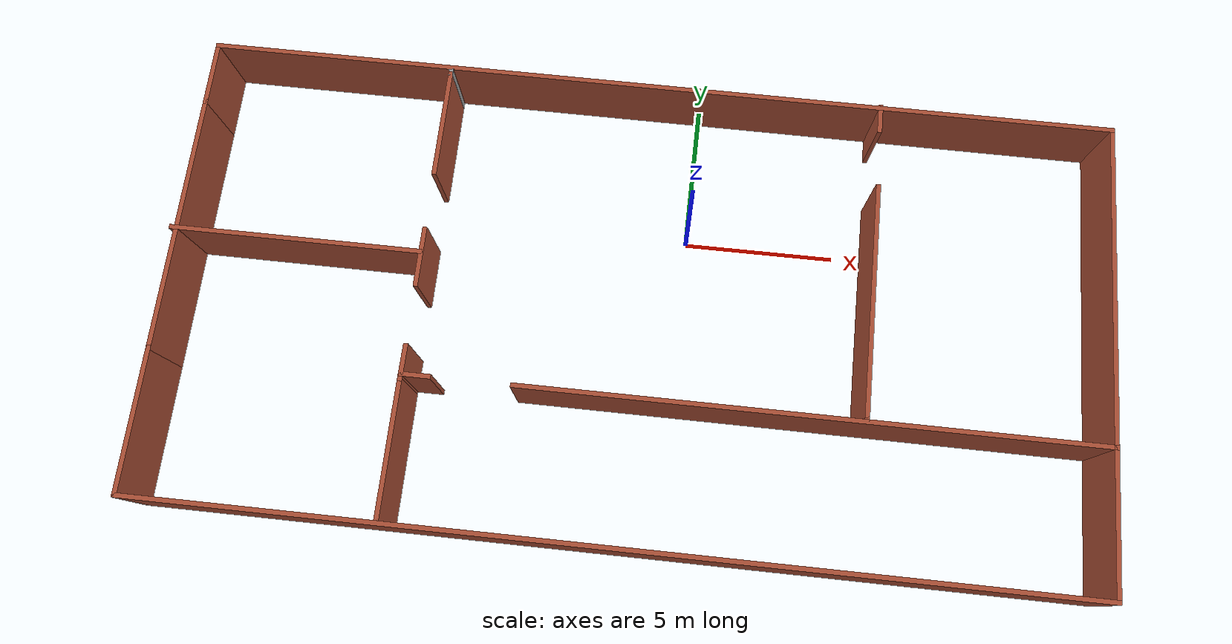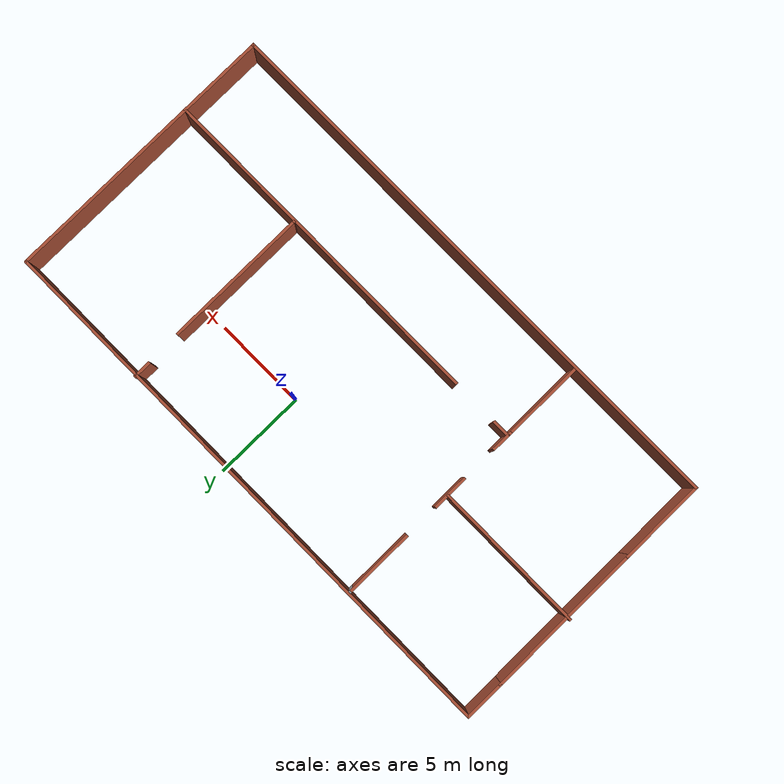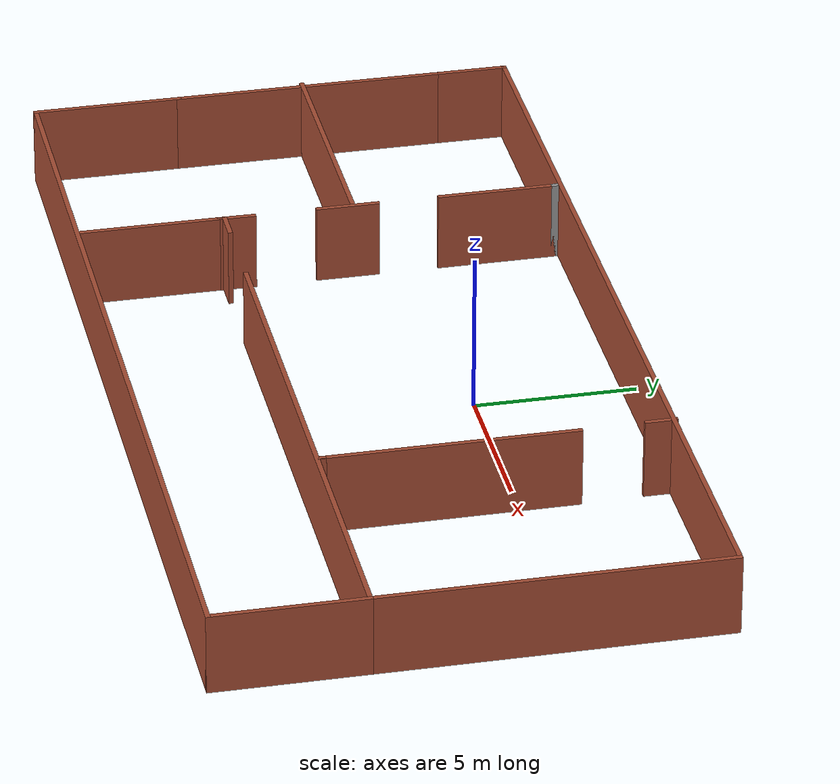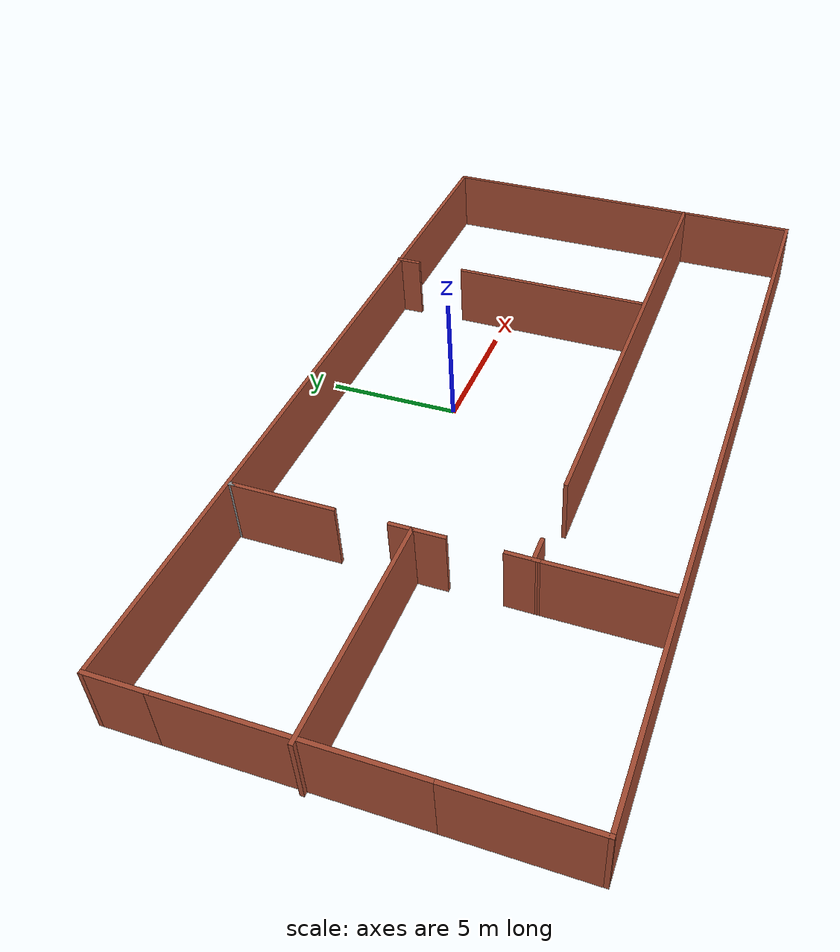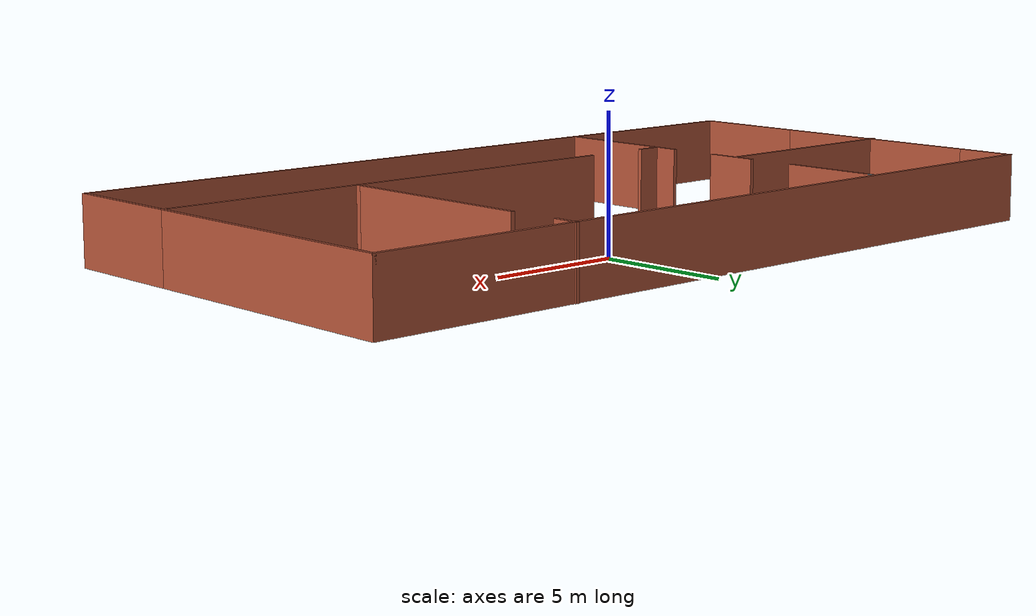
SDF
<?xml version='1.0'?>
<sdf version='1.6'>
  <model name='building'>
    <pose frame=''>-1.48575 -2.96603 0 0 -0 0</pose>
    <link name='Wall_0'>
      <collision name='Wall_0_Collision'>
        <geometry>
          <box>
            <size>2.25 0.15 2.5</size>
          </box>
        </geometry>
        <pose frame=''>0 0 1.25 0 -0 0</pose>
      </collision>
      <visual name='Wall_0_Visual'>
        <pose frame=''>0 0 1.25 0 -0 0</pose>
        <geometry>
          <box>
            <size>2.25 0.15 2.5</size>
          </box>
        </geometry>
        <material>
          <script>
            <uri>file://media/materials/scripts/gazebo.material</uri>
            <name>Gazebo/Bricks</name>
          </script>
          <ambient>1 1 1 1</ambient>
        </material>
        <meta>
          <layer>0</layer>
        </meta>
      </visual>
      <pose frame=''>-14.9721 6.52571 0 0 -0 1.5708</pose>
    </link>
    <link name='Wall_1'>
      <collision name='Wall_1_Collision'>
        <geometry>
          <box>
            <size>30.25 0.15 2.5</size>
          </box>
        </geometry>
        <pose frame=''>0 0 1.25 0 -0 0</pose>
      </collision>
      <visual name='Wall_1_Visual'>
        <pose frame=''>0 0 1.25 0 -0 0</pose>
        <geometry>
          <box>
            <size>30.25 0.15 2.5</size>
          </box>
        </geometry>
        <material>
          <script>
            <uri>file://media/materials/scripts/gazebo.material</uri>
            <name>Gazebo/Bricks</name>
          </script>
          <ambient>1 1 1 1</ambient>
        </material>
        <meta>
          <layer>0</layer>
        </meta>
      </visual>
      <pose frame=''>0.077883 7.57571 0 0 -0 0</pose>
    </link>
    <link name='Wall_11'>
      <collision name='Wall_11_Collision'>
        <geometry>
          <box>
            <size>18.75 0.15 2.5</size>
          </box>
        </geometry>
        <pose frame=''>0 0 1.25 0 -0 0</pose>
      </collision>
      <visual name='Wall_11_Visual'>
        <pose frame=''>0 0 1.25 0 -0 0</pose>
        <geometry>
          <box>
            <size>18.75 0.15 2.5</size>
          </box>
        </geometry>
        <material>
          <script>
            <uri>file://media/materials/scripts/gazebo.material</uri>
            <name>Gazebo/Bricks</name>
          </script>
          <ambient>1 1 1 1</ambient>
        </material>
        <meta>
          <layer>0</layer>
        </meta>
      </visual>
      <pose frame=''>5.82788 -3.02429 0 0 -0 3.14159</pose>
    </link>
    <link name='Wall_14'>
      <collision name='Wall_14_Collision'>
        <geometry>
          <box>
            <size>4.5 0.15 2.5</size>
          </box>
        </geometry>
        <pose frame=''>0 0 1.25 0 -0 0</pose>
      </collision>
      <visual name='Wall_14_Visual'>
        <pose frame=''>0 0 1.25 0 -0 0</pose>
        <geometry>
          <box>
            <size>4.5 0.15 2.5</size>
          </box>
        </geometry>
        <material>
          <script>
            <uri>file://media/materials/scripts/gazebo.material</uri>
            <name>Gazebo/Bricks</name>
          </script>
          <ambient>1 1 1 1</ambient>
        </material>
        <meta>
          <layer>0</layer>
        </meta>
      </visual>
      <pose frame=''>-6.98743 -5.3597 0 0 -0 1.5708</pose>
    </link>
    <link name='Wall_19'>
      <collision name='Wall_19_Collision'>
        <geometry>
          <box>
            <size>2 0.15 2.5</size>
          </box>
        </geometry>
        <pose frame=''>0 0 1.25 0 -0 0</pose>
      </collision>
      <visual name='Wall_19_Visual'>
        <pose frame=''>0 0 1.25 0 -0 0</pose>
        <geometry>
          <box>
            <size>2 0.15 2.5</size>
          </box>
        </geometry>
        <material>
          <script>
            <uri>file://media/materials/scripts/gazebo.material</uri>
            <name>Gazebo/Bricks</name>
          </script>
          <ambient>1 1 1 1</ambient>
        </material>
        <meta>
          <layer>0</layer>
        </meta>
      </visual>
      <pose frame=''>-6.98743 0.834126 0 0 -0 1.5708</pose>
    </link>
    <link name='Wall_2'>
      <collision name='Wall_2_Collision'>
        <geometry>
          <box>
            <size>10.75 0.15 2.5</size>
          </box>
        </geometry>
        <pose frame=''>0 0 1.25 0 -0 0</pose>
      </collision>
      <visual name='Wall_2_Visual'>
        <pose frame=''>0 0 1.25 0 -0 0</pose>
        <geometry>
          <box>
            <size>10.75 0.15 2.5</size>
          </box>
        </geometry>
        <material>
          <script>
            <uri>file://media/materials/scripts/gazebo.material</uri>
            <name>Gazebo/Bricks</name>
          </script>
          <ambient>1 1 1 1</ambient>
        </material>
        <meta>
          <layer>0</layer>
        </meta>
      </visual>
      <pose frame=''>15.1279 2.27571 0 0 -0 -1.5708</pose>
    </link>
    <link name='Wall_21'>
      <collision name='Wall_21_Collision'>
        <geometry>
          <box>
            <size>8.25 0.15 2.5</size>
          </box>
        </geometry>
        <pose frame=''>0 0 1.25 0 -0 0</pose>
      </collision>
      <visual name='Wall_21_Visual'>
        <pose frame=''>0 0 1.25 0 -0 0</pose>
        <geometry>
          <box>
            <size>8.25 0.15 2.5</size>
          </box>
        </geometry>
        <material>
          <script>
            <uri>file://media/materials/scripts/gazebo.material</uri>
            <name>Gazebo/Bricks</name>
          </script>
          <ambient>1 1 1 1</ambient>
        </material>
        <meta>
          <layer>0</layer>
        </meta>
      </visual>
      <pose frame=''>-11.0779 1.00143 0 0 -0 3.14159</pose>
    </link>
    <link name='Wall_23'>
      <collision name='Wall_23_Collision'>
        <geometry>
          <box>
            <size>3.75 0.15 2.5</size>
          </box>
        </geometry>
        <pose frame=''>0 0 1.25 0 -0 0</pose>
      </collision>
      <visual name='Wall_23_Visual'>
        <pose frame=''>0 0 1.25 0 -0 0</pose>
        <geometry>
          <box>
            <size>3.75 0.15 2.5</size>
          </box>
        </geometry>
        <material>
          <script>
            <uri>file://media/materials/scripts/gazebo.material</uri>
            <name>Gazebo/Bricks</name>
          </script>
          <ambient>1 1 1 1</ambient>
        </material>
        <meta>
          <layer>0</layer>
        </meta>
      </visual>
      <pose frame=''>-6.98743 5.55241 0 0 -0 1.5708</pose>
    </link>
    <link name='Wall_24'>
      <collision name='Wall_24_Collision'>
        <geometry>
          <box>
            <size>0.25 0.15 2.5</size>
          </box>
        </geometry>
        <pose frame=''>0 0 1.25 0 -0 0</pose>
      </collision>
      <visual name='Wall_24_Visual'>
        <pose frame=''>0 0 1.25 0 -0 0</pose>
        <geometry>
          <box>
            <size>0.25 0.15 2.5</size>
          </box>
        </geometry>
        <material>
          <script>
            <uri>file://media/materials/scripts/gazebo.material</uri>
            <name>Gazebo/Grey</name>
          </script>
          <ambient>1 1 1 1</ambient>
        </material>
        <meta>
          <layer>0</layer>
        </meta>
      </visual>
      <pose frame=''>-6.98743 7.40241 0 0 -0 1.5708</pose>
    </link>
    <link name='Wall_28'>
      <collision name='Wall_28_Collision'>
        <geometry>
          <box>
            <size>7.75 0.15 2.5</size>
          </box>
        </geometry>
        <pose frame=''>0 0 1.25 0 -0 0</pose>
      </collision>
      <visual name='Wall_28_Visual'>
        <pose frame=''>0 0 1.25 0 -0 0</pose>
        <geometry>
          <box>
            <size>7.75 0.15 2.5</size>
          </box>
        </geometry>
        <material>
          <script>
            <uri>file://media/materials/scripts/gazebo.material</uri>
            <name>Gazebo/Bricks</name>
          </script>
          <ambient>1 1 1 1</ambient>
        </material>
        <meta>
          <layer>0</layer>
        </meta>
      </visual>
      <pose frame=''>7.50962 0.969723 0 0 -0 -1.5708</pose>
    </link>
    <link name='Wall_30'>
      <collision name='Wall_30_Collision'>
        <geometry>
          <box>
            <size>0.25 0.15 2.5</size>
          </box>
        </geometry>
        <pose frame=''>0 0 1.25 0 -0 0</pose>
      </collision>
      <visual name='Wall_30_Visual'>
        <pose frame=''>0 0 1.25 0 -0 0</pose>
        <geometry>
          <box>
            <size>0.25 0.15 2.5</size>
          </box>
        </geometry>
        <material>
          <script>
            <uri>file://media/materials/scripts/gazebo.material</uri>
            <name>Gazebo/Bricks</name>
          </script>
          <ambient>1 1 1 1</ambient>
        </material>
        <meta>
          <layer>0</layer>
        </meta>
      </visual>
      <pose frame=''>7.50962 -2.88028 0 0 -0 -1.5708</pose>
    </link>
    <link name='Wall_32'>
      <collision name='Wall_32_Collision'>
        <geometry>
          <box>
            <size>1 0.15 2.5</size>
          </box>
        </geometry>
        <pose frame=''>0 0 1.25 0 -0 0</pose>
      </collision>
      <visual name='Wall_32_Visual'>
        <pose frame=''>0 0 1.25 0 -0 0</pose>
        <geometry>
          <box>
            <size>1 0.15 2.5</size>
          </box>
        </geometry>
        <material>
          <script>
            <uri>file://media/materials/scripts/gazebo.material</uri>
            <name>Gazebo/Bricks</name>
          </script>
          <ambient>1 1 1 1</ambient>
        </material>
        <meta>
          <layer>0</layer>
        </meta>
      </visual>
      <pose frame=''>7.45893 7.19929 0 0 -0 -1.5708</pose>
    </link>
    <link name='Wall_37'>
      <collision name='Wall_37_Collision'>
        <geometry>
          <box>
            <size>1 0.15 2.5</size>
          </box>
        </geometry>
        <pose frame=''>0 0 1.25 0 -0 0</pose>
      </collision>
      <visual name='Wall_37_Visual'>
        <pose frame=''>0 0 1.25 0 -0 0</pose>
        <geometry>
          <box>
            <size>1 0.15 2.5</size>
          </box>
        </geometry>
        <material>
          <script>
            <uri>file://media/materials/scripts/gazebo.material</uri>
            <name>Gazebo/Bricks</name>
          </script>
          <ambient>1 1 1 1</ambient>
        </material>
        <meta>
          <layer>0</layer>
        </meta>
      </visual>
      <pose frame=''>-6.54022 -3.0261 0 0 -0 3.14159</pose>
    </link>
    <link name='Wall_4'>
      <collision name='Wall_4_Collision'>
        <geometry>
          <box>
            <size>8.65 0.15 2.5</size>
          </box>
        </geometry>
        <pose frame=''>0 0 1.25 0 -0 0</pose>
      </collision>
      <visual name='Wall_4_Visual'>
        <pose frame=''>0 0 1.25 0 -0 0</pose>
        <geometry>
          <box>
            <size>8.65 0.15 2.5</size>
          </box>
        </geometry>
        <material>
          <script>
            <uri>file://media/materials/scripts/gazebo.material</uri>
            <name>Gazebo/Bricks</name>
          </script>
          <ambient>1 1 1 1</ambient>
        </material>
        <meta>
          <layer>0</layer>
        </meta>
      </visual>
      <pose frame=''>-14.9721 1.22571 0 0 -0 1.5708</pose>
    </link>
    <link name='Wall_44'>
      <collision name='Wall_44_Collision'>
        <geometry>
          <box>
            <size>1.20526 0.15 2.5</size>
          </box>
        </geometry>
        <pose frame=''>0 0 1.25 0 -0 0</pose>
      </collision>
      <visual name='Wall_44_Visual'>
        <pose frame=''>0 0 1.25 0 -0 0</pose>
        <geometry>
          <box>
            <size>1.20526 0.15 2.5</size>
          </box>
        </geometry>
        <material>
          <script>
            <uri>file://media/materials/scripts/gazebo.material</uri>
            <name>Gazebo/Bricks</name>
          </script>
          <ambient>1 1 1 1</ambient>
        </material>
        <meta>
          <layer>0</layer>
        </meta>
      </visual>
      <pose frame=''>-6.98173 -2.6571 0 0 -0 -1.5816</pose>
    </link>
    <link name='Wall_7'>
      <collision name='Wall_7_Collision'>
        <geometry>
          <box>
            <size>4.75 0.15 2.5</size>
          </box>
        </geometry>
        <pose frame=''>0 0 1.25 0 -0 0</pose>
      </collision>
      <visual name='Wall_7_Visual'>
        <pose frame=''>0 0 1.25 0 -0 0</pose>
        <geometry>
          <box>
            <size>4.75 0.15 2.5</size>
          </box>
        </geometry>
        <material>
          <script>
            <uri>file://media/materials/scripts/gazebo.material</uri>
            <name>Gazebo/Bricks</name>
          </script>
          <ambient>1 1 1 1</ambient>
        </material>
        <meta>
          <layer>0</layer>
        </meta>
      </visual>
      <pose frame=''>-14.9721 -5.32429 0 0 -0 -1.5708</pose>
    </link>
    <link name='Wall_8'>
      <collision name='Wall_8_Collision'>
        <geometry>
          <box>
            <size>30.25 0.15 2.5</size>
          </box>
        </geometry>
        <pose frame=''>0 0 1.25 0 -0 0</pose>
      </collision>
      <visual name='Wall_8_Visual'>
        <pose frame=''>0 0 1.25 0 -0 0</pose>
        <geometry>
          <box>
            <size>30.25 0.15 2.5</size>
          </box>
        </geometry>
        <material>
          <script>
            <uri>file://media/materials/scripts/gazebo.material</uri>
            <name>Gazebo/Bricks</name>
          </script>
          <ambient>1 1 1 1</ambient>
        </material>
        <meta>
          <layer>0</layer>
        </meta>
      </visual>
      <pose frame=''>0.077883 -7.62429 0 0 -0 0</pose>
    </link>
    <link name='Wall_9'>
      <collision name='Wall_9_Collision'>
        <geometry>
          <box>
            <size>4.75 0.15 2.5</size>
          </box>
        </geometry>
        <pose frame=''>0 0 1.25 0 -0 0</pose>
      </collision>
      <visual name='Wall_9_Visual'>
        <pose frame=''>0 0 1.25 0 -0 0</pose>
        <geometry>
          <box>
            <size>4.75 0.15 2.5</size>
          </box>
        </geometry>
        <material>
          <script>
            <uri>file://media/materials/scripts/gazebo.material</uri>
            <name>Gazebo/Bricks</name>
          </script>
          <ambient>1 1 1 1</ambient>
        </material>
        <meta>
          <layer>0</layer>
        </meta>
      </visual>
      <pose frame=''>15.1279 -5.32429 0 0 -0 1.5708</pose>
    </link>
    <static>1</static>
  </model>
</sdf>
